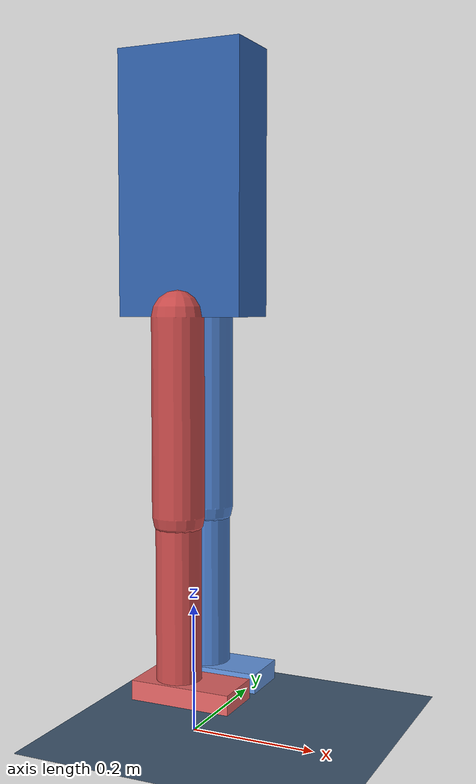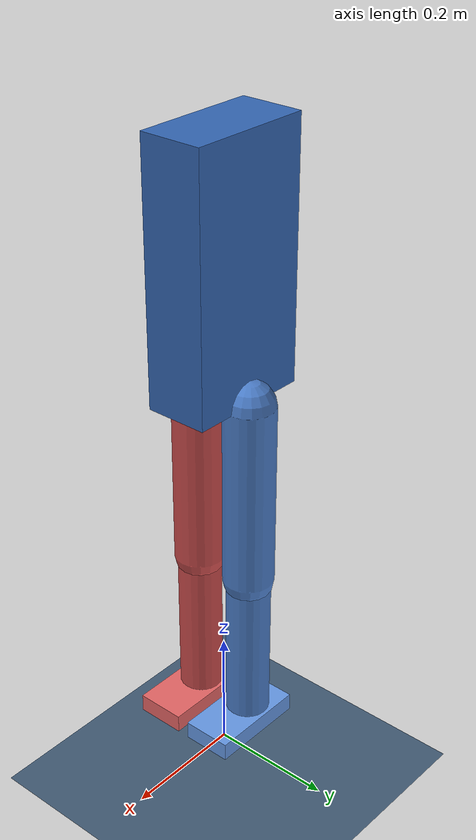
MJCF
<mujoco model="biped">
  <compiler angle="radian" autolimits="true"/>

  <option timestep="0.02" integrator="implicitfast" gravity="0 0 -9.81">
    <flag contact="enable"/>
  </option>

  <default>
    <joint damping="1.5" armature="0.01" limited="true"/>
    <geom condim="3" friction="0.8 0.005 0.0001" rgba="0.7 0.5 0.3 1"/>
    <motor ctrllimited="true" ctrlrange="-1 1"/>
  </default>

  <asset>
    <texture type="2d" name="grid" builtin="checker" width="512" height="512"
             rgb1="0.2 0.3 0.4" rgb2="0.3 0.4 0.5"/>
    <material name="grid_mat" texture="grid" texrepeat="8 8" reflectance="0.2"/>
    <texture type="skybox" name="sky" builtin="gradient" width="512" height="512"
             rgb1="0.4 0.6 0.8" rgb2="0.9 0.9 1.0"/>
    <hfield name="terrain" nrow="100" ncol="100" size="5 5 0.03 0.001"/>
  </asset>

  <worldbody>
    <light pos="0 0 6" dir="0 0 -1" diffuse="1 1 1" specular="0.3 0.3 0.3"/>
    <geom name="floor" type="plane" size="20 20 0.1" material="grid_mat" rgba="0.5 0.5 0.5 1"/>
    <geom name="hfield_floor" type="hfield" hfield="terrain" pos="0 0 0" rgba="0.5 0.55 0.5 0" contype="0" conaffinity="0"/>

    <!-- ==================== TORSO ==================== -->
    <body name="torso" pos="0 0 0.85">
      <freejoint name="root"/>
      <geom name="torso_geom" type="box" size="0.1 0.05 0.2" mass="8.0"
            rgba="0.2 0.4 0.7 1"/>
      <site name="imu" pos="0 0 0" type="box" size="0.01 0.01 0.01" rgba="1 0 0 0.5"/>

      <!-- ==================== LEFT LEG ==================== -->
      <body name="left_thigh" pos="0 0.05 -0.2">
        <joint name="left_hip_flexion" axis="0 1 0" range="-1.2 0.8" ref="0"/>
        <joint name="left_hip_abduction" axis="1 0 0" range="-0.5 0.5" ref="0"/>
        <geom name="left_thigh_geom" type="capsule" fromto="0 0 0 0 0 -0.3"
              size="0.04" mass="2.0" rgba="0.3 0.5 0.8 1"/>

        <body name="left_shin" pos="0 0 -0.3">
          <joint name="left_knee" axis="0 1 0" range="-1.5 -0.05" ref="-0.4"/>
          <geom name="left_shin_geom" type="capsule" fromto="0 0 0 0 0 -0.25"
                size="0.035" mass="1.2" rgba="0.3 0.5 0.8 1"/>

          <body name="left_foot" pos="0 0 -0.25">
            <joint name="left_ankle" axis="0 1 0" range="-0.6 0.6" ref="0"/>
            <geom name="left_foot_geom" type="box" size="0.08 0.04 0.015"
                  pos="0.02 0 -0.015" mass="0.4" rgba="0.4 0.6 0.9 1"/>
            <site name="left_foot_contact" pos="0.02 0 -0.03" type="sphere" size="0.01"
                  rgba="0 1 0 0.5"/>
          </body>
        </body>
      </body>

      <!-- ==================== RIGHT LEG ==================== -->
      <body name="right_thigh" pos="0 -0.05 -0.2">
        <joint name="right_hip_flexion" axis="0 1 0" range="-1.2 0.8" ref="0"/>
        <joint name="right_hip_abduction" axis="1 0 0" range="-0.5 0.5" ref="0"/>
        <geom name="right_thigh_geom" type="capsule" fromto="0 0 0 0 0 -0.3"
              size="0.04" mass="2.0" rgba="0.8 0.3 0.3 1"/>

        <body name="right_shin" pos="0 0 -0.3">
          <joint name="right_knee" axis="0 1 0" range="-1.5 -0.05" ref="-0.4"/>
          <geom name="right_shin_geom" type="capsule" fromto="0 0 0 0 0 -0.25"
                size="0.035" mass="1.2" rgba="0.8 0.3 0.3 1"/>

          <body name="right_foot" pos="0 0 -0.25">
            <joint name="right_ankle" axis="0 1 0" range="-0.6 0.6" ref="0"/>
            <geom name="right_foot_geom" type="box" size="0.08 0.04 0.015"
                  pos="0.02 0 -0.015" mass="0.4" rgba="0.9 0.4 0.4 1"/>
            <site name="right_foot_contact" pos="0.02 0 -0.03" type="sphere" size="0.01"
                  rgba="0 1 0 0.5"/>
          </body>
        </body>
      </body>
    </body>
  </worldbody>

  <actuator>
    <motor name="left_hip_flexion_motor"    joint="left_hip_flexion"    gear="80" ctrllimited="true" ctrlrange="-1 1"/>
    <motor name="left_hip_abduction_motor"  joint="left_hip_abduction"  gear="60" ctrllimited="true" ctrlrange="-1 1"/>
    <motor name="left_knee_motor"           joint="left_knee"           gear="80" ctrllimited="true" ctrlrange="-1 1"/>
    <motor name="left_ankle_motor"          joint="left_ankle"          gear="40" ctrllimited="true" ctrlrange="-1 1"/>
    <motor name="right_hip_flexion_motor"   joint="right_hip_flexion"   gear="80" ctrllimited="true" ctrlrange="-1 1"/>
    <motor name="right_hip_abduction_motor" joint="right_hip_abduction" gear="60" ctrllimited="true" ctrlrange="-1 1"/>
    <motor name="right_knee_motor"          joint="right_knee"          gear="80" ctrllimited="true" ctrlrange="-1 1"/>
    <motor name="right_ankle_motor"         joint="right_ankle"         gear="40" ctrllimited="true" ctrlrange="-1 1"/>
  </actuator>

  <sensor>
    <jointpos name="jpos_left_hip_flex"  joint="left_hip_flexion"/>
    <jointpos name="jpos_left_hip_abd"   joint="left_hip_abduction"/>
    <jointpos name="jpos_left_knee"      joint="left_knee"/>
    <jointpos name="jpos_left_ankle"     joint="left_ankle"/>
    <jointpos name="jpos_right_hip_flex" joint="right_hip_flexion"/>
    <jointpos name="jpos_right_hip_abd"  joint="right_hip_abduction"/>
    <jointpos name="jpos_right_knee"     joint="right_knee"/>
    <jointpos name="jpos_right_ankle"    joint="right_ankle"/>

    <jointvel name="jvel_left_hip_flex"  joint="left_hip_flexion"/>
    <jointvel name="jvel_left_hip_abd"   joint="left_hip_abduction"/>
    <jointvel name="jvel_left_knee"      joint="left_knee"/>
    <jointvel name="jvel_left_ankle"     joint="left_ankle"/>
    <jointvel name="jvel_right_hip_flex" joint="right_hip_flexion"/>
    <jointvel name="jvel_right_hip_abd"  joint="right_hip_abduction"/>
    <jointvel name="jvel_right_knee"     joint="right_knee"/>
    <jointvel name="jvel_right_ankle"    joint="right_ankle"/>

    <gyro    name="torso_gyro"  site="imu"/>
    <accelerometer name="torso_accel" site="imu"/>

    <touch name="left_foot_touch"  site="left_foot_contact"/>
    <touch name="right_foot_touch" site="right_foot_contact"/>
  </sensor>
</mujoco>
